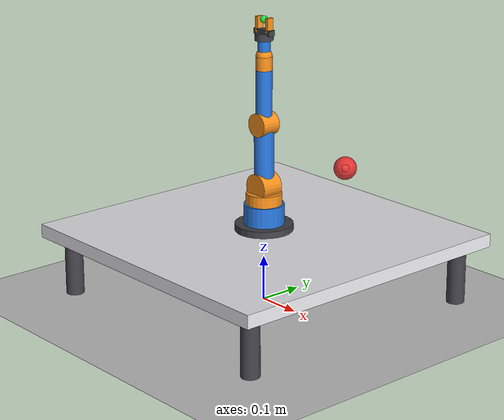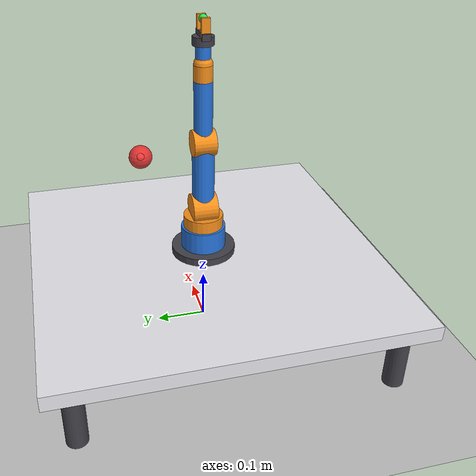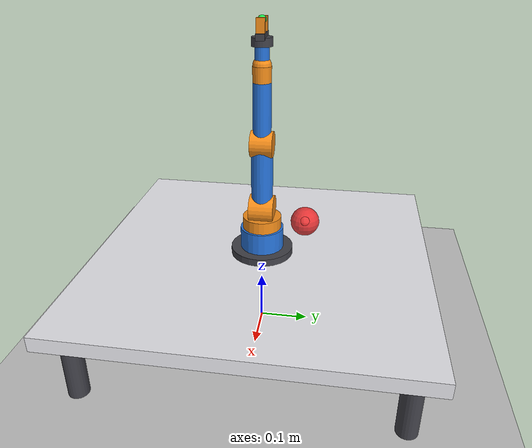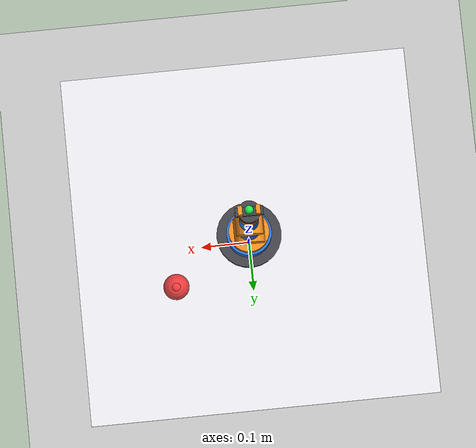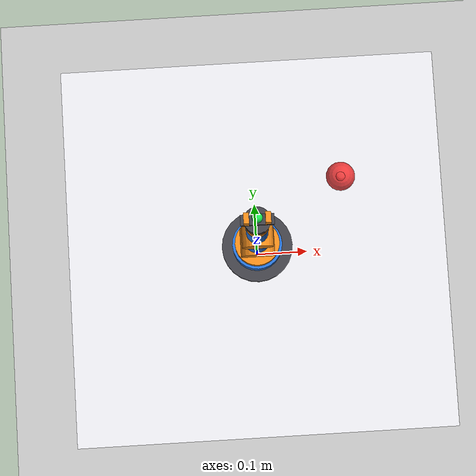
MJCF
<mujoco model="desktop_arm_6dof">
  <compiler angle="radian" coordinate="local" inertiafromgeom="true"/>
  <option timestep="0.005" gravity="0 0 -9.81" integrator="Euler"/>

  <default>
    <joint damping="0.8" armature="0.01"/>
    <geom contype="1" conaffinity="1" friction="0.8 0.1 0.1"/>
    <position kp="40" kv="5"/>
  </default>

  <asset>
    <texture type="skybox" builtin="gradient" rgb1="0.3 0.5 0.7" rgb2="0.1 0.1 0.2" width="512" height="512"/>
    <texture name="grid" type="2d" builtin="checker" rgb1="0.85 0.85 0.85" rgb2="0.65 0.65 0.65" width="512" height="512"/>
    <material name="grid_mat" texture="grid" texrepeat="5 5" reflectance="0.1"/>
    <material name="arm_mat" rgba="0.15 0.45 0.85 1.0" specular="0.4" shininess="0.3"/>
    <material name="joint_mat" rgba="0.95 0.55 0.1 1.0" specular="0.5" shininess="0.4"/>
    <material name="flange_mat" rgba="0.25 0.25 0.28 1.0" specular="0.2"/>
    <material name="target_mat" rgba="0.95 0.15 0.15 0.85" specular="0.6" shininess="0.6"/>
    <material name="table_mat" rgba="0.9 0.9 0.92 1.0" specular="0.2"/>
    <material name="ee_mat" rgba="0.1 0.85 0.3 1.0" specular="0.5"/>
  </asset>

  <worldbody>
    <!-- Lighting -->
    <light pos="0.2 -0.3 1.5" dir="-0.2 0.3 -1.0" diffuse="0.85 0.85 0.85" specular="0.3 0.3 0.3"/>
    <light pos="-0.5 0.5 1.2" dir="0.5 -0.5 -1.0" diffuse="0.4 0.4 0.4"/>

    <!-- Floor -->
    <geom name="floor" type="plane" size="1.2 1.2 0.05" material="grid_mat"/>

    <!-- Workspace Table -->
    <body name="table" pos="0 0 0.15">
      <geom name="table_top" type="box" size="0.35 0.35 0.015" material="table_mat"/>
      <geom name="table_leg1" type="cylinder" size="0.02 0.07" pos="0.3 0.3 -0.075" material="flange_mat"/>
      <geom name="table_leg2" type="cylinder" size="0.02 0.07" pos="-0.3 0.3 -0.075" material="flange_mat"/>
      <geom name="table_leg3" type="cylinder" size="0.02 0.07" pos="0.3 -0.3 -0.075" material="flange_mat"/>
      <geom name="table_leg4" type="cylinder" size="0.02 0.07" pos="-0.3 -0.3 -0.075" material="flange_mat"/>
    </body>

    <!-- 3D Target Indicator (Mocap body: directly set position from Python) -->
    <body name="target" pos="0.15 0.10 0.32" mocap="true">
      <geom name="target_geom" type="sphere" size="0.025" material="target_mat" contype="0" conaffinity="0"/>
      <site name="target_site" pos="0 0 0" size="0.008" rgba="1 1 1 0.9"/>
    </body>

    <!-- 6-DOF Desktop Robot Arm Base -->
    <body name="arm_base" pos="0 0 0.165">
      <geom name="base_plate" type="cylinder" size="0.065 0.015" material="flange_mat"/>
      <geom name="base_pillar" type="cylinder" size="0.045 0.03" pos="0 0 0.03" material="arm_mat"/>

      <!-- Joint 1: Base Yaw (Z-axis rotation) -->
      <body name="link1" pos="0 0 0.06">
        <joint name="joint1_base_yaw" type="hinge" axis="0 0 1" range="-3.1416 3.1416"/>
        <geom name="j1_cylinder" type="cylinder" size="0.04 0.025" material="joint_mat"/>

        <!-- Joint 2: Shoulder Pitch (Y-axis rotation) -->
        <body name="link2" pos="0 0 0.04">
          <joint name="joint2_shoulder_pitch" type="hinge" axis="0 1 0" range="-1.5708 1.5708"/>
          <geom name="j2_hub" type="cylinder" size="0.03 0.025" fromto="0 -0.025 0 0 0.025 0" material="joint_mat"/>
          <geom name="upper_arm" type="capsule" fromto="0 0 0 0 0 0.14" size="0.022" material="arm_mat"/>

          <!-- Joint 3: Elbow Pitch (Y-axis rotation) -->
          <body name="link3" pos="0 0 0.14">
            <joint name="joint3_elbow_pitch" type="hinge" axis="0 1 0" range="-2.0944 2.0944"/>
            <geom name="j3_hub" type="cylinder" size="0.026 0.022" fromto="0 -0.022 0 0 0.022 0" material="joint_mat"/>
            <geom name="forearm" type="capsule" fromto="0 0 0 0 0 0.12" size="0.018" material="arm_mat"/>

            <!-- Joint 4: Forearm Roll (Z-axis rotation along arm link) -->
            <body name="link4" pos="0 0 0.12">
              <joint name="joint4_wrist_roll" type="hinge" axis="0 0 1" range="-3.1416 3.1416"/>
              <geom name="j4_swivel" type="cylinder" size="0.018 0.015" pos="0 0 0.015" material="joint_mat"/>

              <!-- Joint 5: Wrist Pitch (Y-axis rotation) -->
              <body name="link5" pos="0 0 0.03">
                <joint name="joint5_wrist_pitch" type="hinge" axis="0 1 0" range="-1.5708 1.5708"/>
                <geom name="j5_hub" type="sphere" size="0.018" material="joint_mat"/>
                <geom name="wrist_link" type="capsule" fromto="0 0 0 0 0 0.035" size="0.014" material="arm_mat"/>

                <!-- Joint 6: Tool / Gripper Roll (Z-axis rotation) -->
                <body name="link6_flange" pos="0 0 0.035">
                  <joint name="joint6_tool_roll" type="hinge" axis="0 0 1" range="-3.1416 3.1416"/>
                  <geom name="tool_disc" type="cylinder" size="0.02 0.008" pos="0 0 0.008" material="flange_mat"/>

                  <!-- Desktop Gripper Fingers (Visual representation) -->
                  <geom name="gripper_base" type="box" size="0.025 0.008 0.006" pos="0 0 0.018" material="flange_mat"/>
                  <geom name="finger_left" type="box" size="0.004 0.008 0.018" pos="-0.016 0 0.032" material="joint_mat"/>
                  <geom name="finger_right" type="box" size="0.004 0.008 0.018" pos="0.016 0 0.032" material="joint_mat"/>

                  <!-- End-Effector Tracking Site -->
                  <site name="ee_site" pos="0 0 0.045" size="0.008" rgba="0.1 0.9 0.3 0.9"/>
                </body>
              </body>
            </body>
          </body>
        </body>
      </body>
    </body>

    <!-- Rendering Cameras -->
    <camera name="cam_isometric" pos="0.55 -0.55 0.65" xyaxes="0.707 0.707 0 -0.408 0.408 0.816"/>
    <camera name="cam_front" pos="0 -0.65 0.45" xyaxes="1 0 0 0 0.45 0.893"/>
    <camera name="cam_overhead" pos="0 0 0.9" xyaxes="1 0 0 0 1 0"/>
  </worldbody>

  <!-- Actuators: Joint Position Controllers simulating digital smart servos (e.g. Feetech / Dynamixel) -->
  <actuator>
    <position name="act_j1" joint="joint1_base_yaw" kp="50" ctrlrange="-3.1416 3.1416"/>
    <position name="act_j2" joint="joint2_shoulder_pitch" kp="60" ctrlrange="-1.5708 1.5708"/>
    <position name="act_j3" joint="joint3_elbow_pitch" kp="50" ctrlrange="-2.0944 2.0944"/>
    <position name="act_j4" joint="joint4_wrist_roll" kp="30" ctrlrange="-3.1416 3.1416"/>
    <position name="act_j5" joint="joint5_wrist_pitch" kp="25" ctrlrange="-1.5708 1.5708"/>
    <position name="act_j6" joint="joint6_tool_roll" kp="20" ctrlrange="-3.1416 3.1416"/>
  </actuator>
</mujoco>
